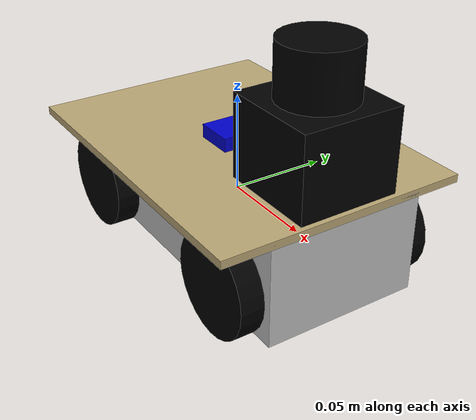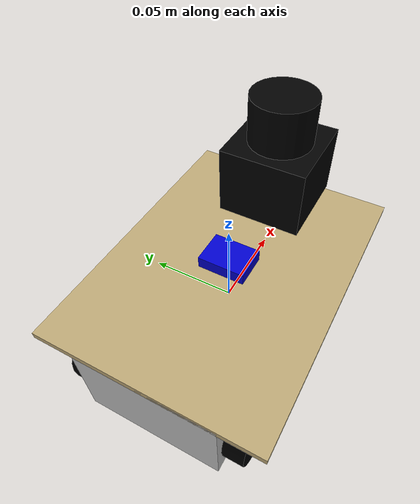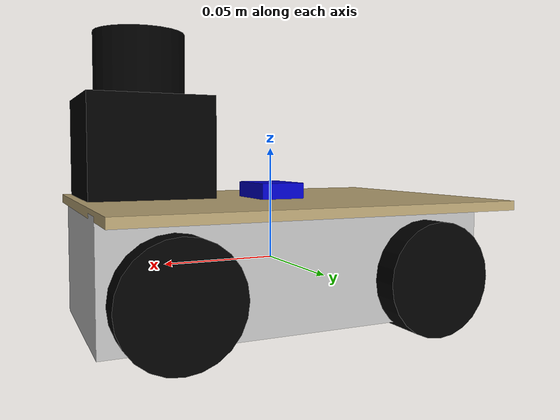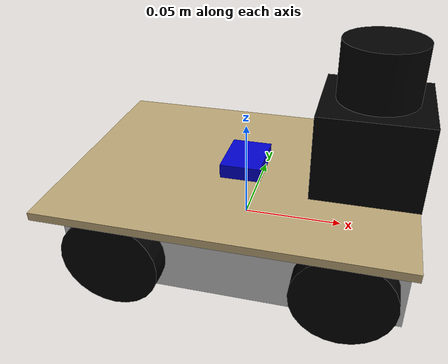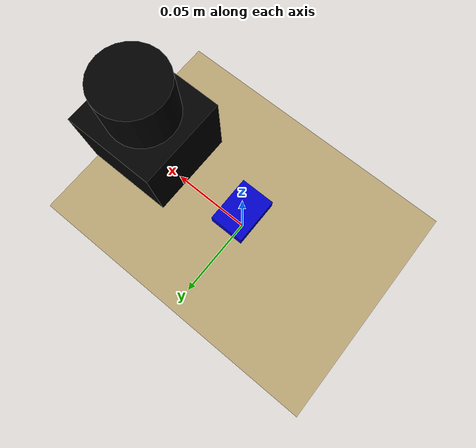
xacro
<?xml version="1.0"?>
<robot xmlns:xacro="http://www.ros.org/wiki/xacro" name="minibot">

  <!-- Nice colors in Gazebo -->
  <xacro:include filename="$(find minibot)/urdf/minibot.gazebo" />

  <!-- chassis -->
  <xacro:property name="length" value="0.17" />
  <xacro:property name="width"  value="0.079" />
  <xacro:property name="height" value="0.051" />

  <!-- main PCB board on top -->
  <xacro:property name="PCBlength" value="0.17" />
  <xacro:property name="PCBwidth"  value="0.126" />
  <xacro:property name="PCBheight" value="0.004" />

  <!-- IMU board BNO055 (mounted) -->
  <xacro:property name="IMUlength" value="0.020" />
  <xacro:property name="IMUwidth"  value="0.027" />
  <xacro:property name="IMUheight" value="0.010" />

  <!-- Raspberry Pi (mounted) -->
  <xacro:property name="Raspilength" value="0.085" />
  <xacro:property name="Raspiwidth"  value="0.056" />
  <xacro:property name="Raspiheight" value="0.030" />

  <!-- Hokuyo laser rangefinder - base -->
  <xacro:property name="laserBaseLength" value="0.05" />
  <xacro:property name="laserBaseWidth"  value="0.05" />
  <xacro:property name="laserBaseHeight" value="0.041" />
  <!-- Hokuyo laser rangefinder - cylinder -->
  <xacro:property name="laserCylLength" value="0.0265" />
  <xacro:property name="laserCylRadius" value="0.01875" />

  <!-- wheel depth is 2.35 cm overall with rubber -->
  <xacro:property name="wheellength" value="0.0235" />
  <xacro:property name="wheelradius" value="0.025" />

  <!-- Materials -->
  <material name="silver">
    <color rgba="0.75 0.75 0.75 1"/>
  </material>
  <material name="blue">
    <color rgba="0 0 0.8 1"/>
  </material>
  <material name="black">
    <color rgba="0 0 0 1"/>
  </material>
  <material name="white">
    <color rgba="1 1 1 1"/>
  </material>
  <material name="euroPCB">
    <color rgba="0.73 0.65 0.46 1"/>
  </material>

  <!-- Default Inertial -->
  <xacro:macro name="default_inertial" params="mass">
    <inertial>
      <mass value="${mass}" />
      <inertia ixx="0.1" ixy="0.0" ixz="0.0" iyy="0.1" iyz="0.0" izz="0.1"/>
    </inertial>
  </xacro:macro>

  <!--
  The chassis.
  "base_link" is a more common name for a chassis in ROS.
  -->
  <link name="base_link">
    <visual>
      <geometry>
        <box size="${length} ${width} ${height}"/>
      </geometry>
      <material name="silver"/>
    </visual>
    <collision>
      <geometry>
        <box size="${length} ${width} ${height}"/>
      </geometry>
    </collision>
    <xacro:default_inertial mass="1"/>
  </link>

  <!-- the main PCB on top of the chassis, where everything is mounted -->
  <link name="mainPCB">
    <visual>
      <geometry>
        <box size="${PCBlength} ${PCBwidth} ${PCBheight}"/>
      </geometry>
      <!-- Located on top of the base -->
      <origin rpy="0 0 0" xyz="0 0 ${height/2}"/>
      <material name="euroPCB"/>
    </visual>
    <collision>
      <geometry>
        <box size="${PCBlength} ${PCBwidth} ${PCBheight}"/>
      </geometry>
    </collision>
    <xacro:default_inertial mass="1"/>
  </link>

  <!-- the IMU on the main PCB -->
  <link name="IMU">
    <visual>
      <geometry>
        <box size="${IMUlength} ${IMUwidth} ${IMUheight}"/>
      </geometry>
      <!-- Located on top of the base, on top of the PCB -->
      <origin rpy="0 0 0" xyz="0 0 ${(height/2)+PCBheight}"/>
      <material name="blue"/>
    </visual>
    <collision>
      <geometry>
        <box size="${IMUlength} ${IMUwidth} ${IMUheight}"/>
      </geometry>
    </collision>
    <xacro:default_inertial mass="1"/>
  </link>

  <!-- the Laser base on the main PCB -->
  <link name="laserBase">
    <visual>
      <geometry>
        <box size="${laserBaseLength} ${laserBaseWidth} ${laserBaseHeight}"/>
      </geometry>
      <!-- Located on top of the base, on top of the PCB, to the front (x) -->
      <origin rpy="0 0 0" xyz="${(length/2)-(laserBaseLength/2)} 0 ${(height/2)+PCBheight+(laserBaseHeight/2)}"/>
      <material name="black"/>
    </visual>
    <collision>
      <geometry>
        <box size="${laserBaseLength} ${laserBaseWidth} ${laserBaseHeight}"/>
      </geometry>
    </collision>
    <xacro:default_inertial mass="1"/>
  </link>

    <!-- the Laser "head" (cylinder) on the lase base -->
    <link name="laserHead">
      <visual>
        <geometry>
          <cylinder length="${laserCylLength}" radius="${laserCylRadius}"/>
        </geometry>
        <!-- Located on top of the base, on top of the PCB, on top of the laser base, to the front (x) -->
        <origin rpy="0 0 0" xyz="${(length/2)-(laserBaseLength/2)} 0 ${(height/2)+PCBheight+laserBaseHeight+(laserCylLength/2)}"/>
        <material name="black"/>
      </visual>
      <collision>
        <geometry>
          <cylinder length="${laserCylLength}" radius="${laserCylRadius}"/>
        </geometry>
      </collision>
      <xacro:default_inertial mass="1"/>
    </link>

  <!-- Wheel 1 -->
  <link name="wheel_1">
    <visual>
      <geometry>
        <cylinder length="${wheellength}" radius="${wheelradius}"/>
      </geometry>
    <origin rpy="0 ${pi/2} ${pi/2}" xyz="0.0565 0.0395 -0.0065"/>
    <material name="black"/>
  </visual>
  <collision>
    <geometry>
      <cylinder length="${wheellength}" radius="${wheelradius}"/>
    </geometry>
  </collision>
  <xacro:default_inertial mass="1"/>
  </link>

  <!-- Wheel 2 -->
  <link name="wheel_2">
    <visual>
      <geometry>
        <cylinder length="${wheellength}" radius="${wheelradius}"/>
      </geometry>
      <origin rpy="0 ${pi/2} ${pi/2}" xyz="-0.0565 0.0395 -0.0065"/>
      <material name="black"/>
    </visual>
    <collision>
      <geometry>
        <cylinder length="${wheellength}" radius="${wheelradius}"/>
      </geometry>
    </collision>
    <xacro:default_inertial mass="1"/>
  </link>

  <!-- Wheel 3 -->
  <link name="wheel_3">
    <visual>
      <geometry>
        <cylinder length="${wheellength}" radius="${wheelradius}"/>
      </geometry>
      <origin rpy="0 ${pi/2} ${pi/2}" xyz="0.0565 -0.0395 -0.0065"/>
      <material name="black"/>
    </visual>
    <collision>
      <geometry>
        <cylinder length="${wheellength}" radius="${wheelradius}"/>
      </geometry>
    </collision>
    <xacro:default_inertial mass="1"/>
  </link>

  <!-- Wheel 4 -->
  <link name="wheel_4">
    <visual>
      <geometry>
        <cylinder length="${wheellength}" radius="${wheelradius}"/>
      </geometry>
      <origin rpy="0 ${pi/2} ${pi/2}" xyz="-0.0565 -0.0395 -0.0065"/>
      <material name="black"/>
    </visual>
    <collision>
      <geometry>
        <cylinder length="${wheellength}" radius="${wheelradius}"/>
      </geometry>
    </collision>
    <xacro:default_inertial mass="1"/>
  </link>

  <!-- Joint for wheel 1 -->
  <joint name="base_to_wheel1" type="fixed">
    <parent link="base_link"/>
    <child link="wheel_1"/>
    <origin xyz="0 0 0"/>
  </joint>
  <!-- Joint for wheel 2 -->
  <joint name="base_to_wheel2" type="fixed">
    <parent link="base_link"/>
    <child link="wheel_2"/>
    <origin xyz="0 0 0"/>
  </joint>
  <!-- Joint for wheel 3 -->
  <joint name="base_to_wheel3" type="fixed">
    <parent link="base_link"/>
    <child link="wheel_3"/>
    <origin xyz="0 0 0"/>
  </joint>
  <!-- Joint for wheel 4 -->
  <joint name="base_to_wheel4" type="fixed">
    <parent link="base_link"/>
    <child link="wheel_4"/>
    <origin xyz="0 0 0"/>
  </joint>

  <!-- Joint for mainPCB -->
  <joint name="base_to_mainPCB" type="fixed">
    <parent link="base_link"/>
    <child link="mainPCB"/>
    <origin xyz="0 0 0"/>
  </joint>

  <!-- Joint for IMU -->
  <joint name="base_to_IMU" type="fixed">
    <parent link="base_link"/>
    <child link="IMU"/>
    <origin xyz="0 0 0"/>
  </joint>

  <!-- Joint for laser base -->
  <joint name="base_to_laserBase" type="fixed">
    <parent link="base_link"/>
    <child link="laserBase"/>
    <origin xyz="0 0 0"/>
  </joint>

  <!-- Joint for laser "head" (cylinder) -->
  <joint name="base_to_laserHead" type="fixed">
    <parent link="base_link"/>
    <child link="laserHead"/>
    <origin xyz="0 0 0"/>
  </joint>

</robot>
